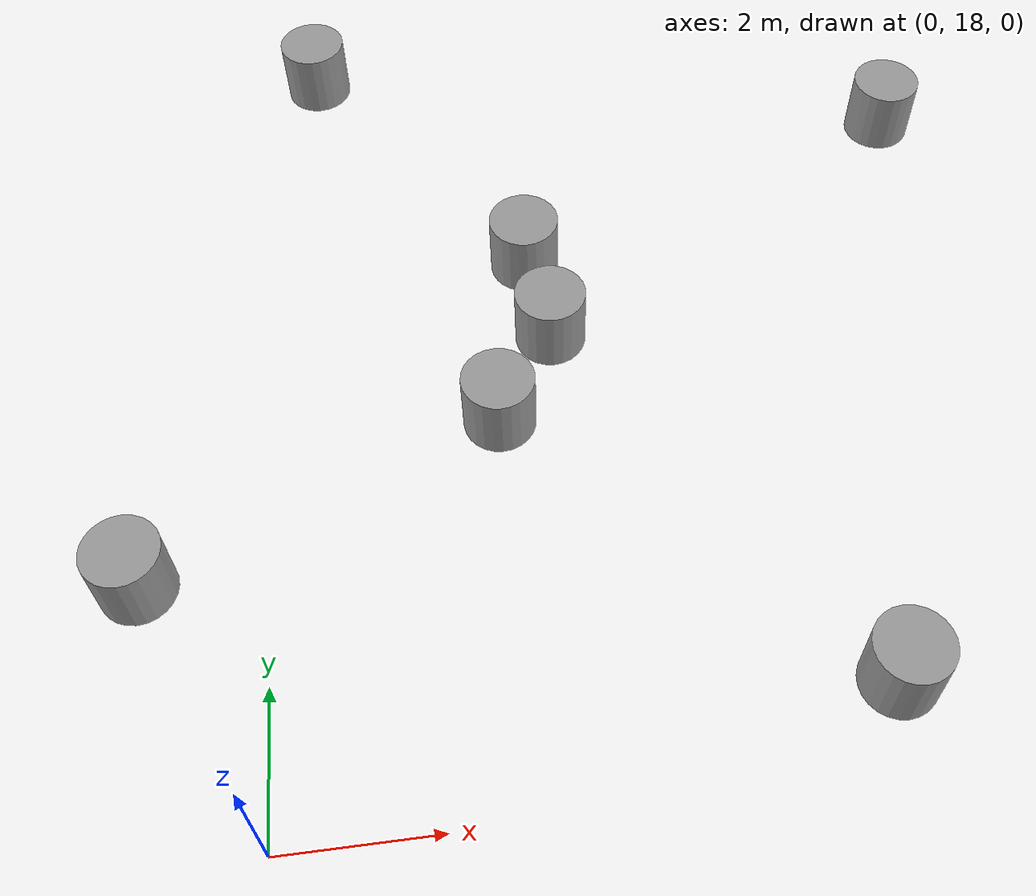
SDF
<sdf version="1.5">
 <world name="map">
  <include><uri>model://sun</uri></include>
  <physics name="default_physics" default="0" type="ode">
   <gravity>0 0 -9.8066</gravity>
   <ode>
    <solver>
     <type>quick</type>
     <iters>10</iters>
     <sor>1.3</sor>
     <use_dynamic_moi_rescaling>0</use_dynamic_moi_rescaling>
    </solver>
    <constraints>
     <cfm>0</cfm>
     <erp>0.2</erp>
     <contact_max_correcting_vel>100</contact_max_correcting_vel>
     <contact_surface_layer>0.001</contact_surface_layer>
    </constraints>
   </ode>
   <max_step_size>0.004</max_step_size>
   <real_time_factor>1</real_time_factor>
   <real_time_update_rate>250</real_time_update_rate>
   <magnetic_field>6.0e-6 2.3e-5 -4.2e-5</magnetic_field>
  </physics>
  <model name="cylinder1">
   <pose>7.49726 19.1224 0.5 0 -0 0</pose>
   <include><uri>model://cylinder</uri></include>
  </model>
  <model name="cylinder2">
   <pose>-1.62697 21.5226 0.5 0 -0 0</pose>
   <include><uri>model://cylinder</uri></include>
  </model>
  <model name="cylinder3">
   <pose>4.01016 24.8742 0.5 0 -0 0</pose>
   <include><uri>model://cylinder</uri></include>
  </model>
  <model name="cylinder4">
   <pose>9.87468 28.5787 0.5 0 -0 0</pose>
   <include><uri>model://cylinder</uri></include>
  </model>
  <model name="cylinder5">
   <pose>0.815764 30.6526 0.5 0 -0 0</pose>
   <include><uri>model://cylinder</uri></include>
  </model>
  <model name="cylinder6"><pose>3.8 26.3 0.5 0 -0 0</pose><include><uri>model://cylinder</uri></include></model>
  <model name="cylinder7">
   <pose>3.14 23.5 0.5 0 -0 0</pose>
   <include><uri>model://cylinder</uri></include>
  </model>
  <scene><ambient>0.0 0.0 0.0 1.0</ambient><shadows>0</shadows></scene>
 </world>
</sdf>

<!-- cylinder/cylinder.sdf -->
<sdf version="1.6">
  <model name='cylinder'>
    <link name='link'>
      <pose> 0 0 0 0 0 0 </pose>
      <inertial>
        <mass>1</mass>
        <inertia>
          <ixx>0.145833</ixx>
          <ixy>0</ixy>
          <ixz>0</ixz>
          <iyy>0.145833</iyy>
          <iyz>0</iyz>
          <izz>0.125</izz>
        </inertia>
        <pose>0 0 0 0 -0 0</pose>
      </inertial>
      <collision name='collision'>
        <geometry>
          <cylinder>
            <radius>0.5</radius>
            <length>1</length>
          </cylinder>
        </geometry>
        <max_contacts>10</max_contacts>
        <surface>
          <contact>
            <ode/>
          </contact>
          <bounce/>
          <friction>
            <torsional>
              <ode/>
            </torsional>
            <ode/>
          </friction>
        </surface>
      </collision>
      <visual name='visual'>
        <geometry>
          <cylinder>
            <radius>0.5</radius>
            <length>1</length>
          </cylinder>
        </geometry>
        <material>
          <script>
            <name>Gazebo/Grey</name>
            <uri>file://media/materials/scripts/gazebo.material</uri>
          </script>
        </material>
      </visual>
      <self_collide>0</self_collide>
      <enable_wind>0</enable_wind>
      <kinematic>0</kinematic>
    </link>
  </model>
</sdf>
